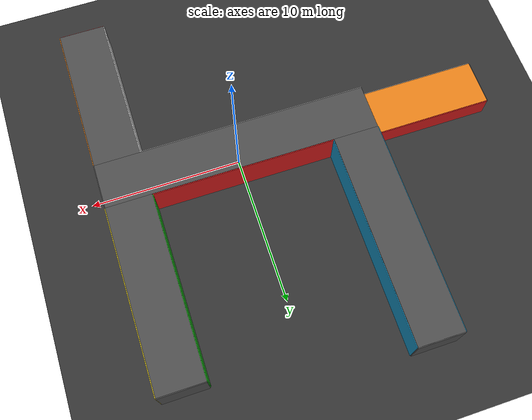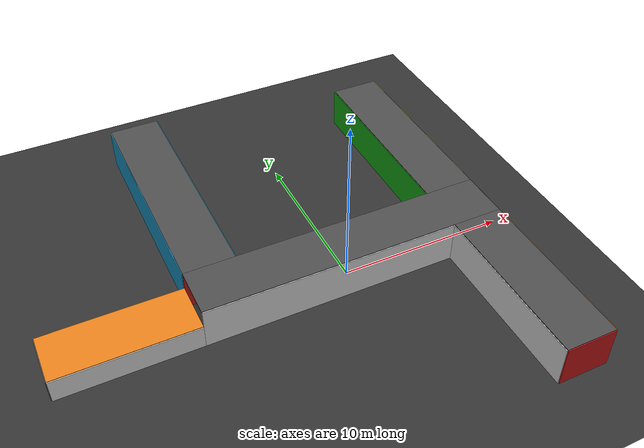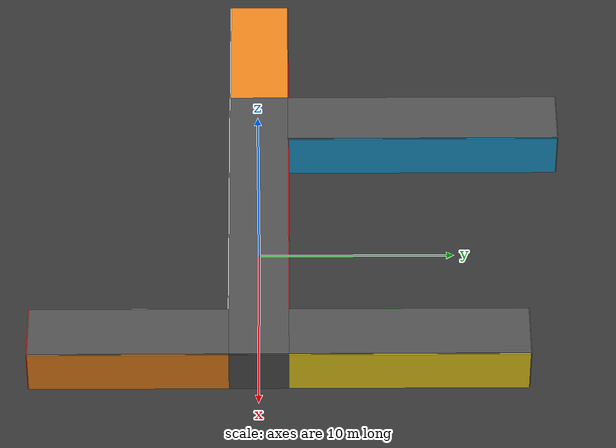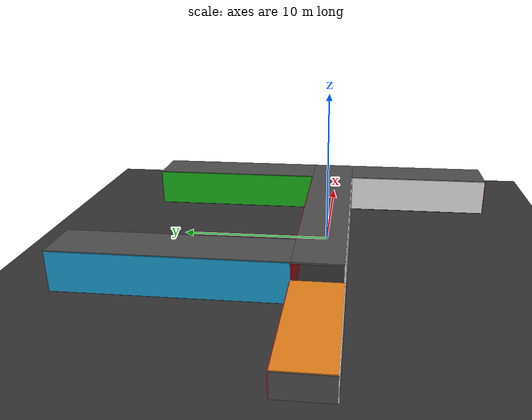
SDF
<?xml version="1.0" ?>
<sdf version="1.6">
  <world name="mine_tunnel">

    <physics type="ode">
      <max_step_size>0.001</max_step_size>
      <real_time_factor>1.0</real_time_factor>
      <real_time_update_rate>1000</real_time_update_rate>
    </physics>

    <scene>
      <ambient>0.3 0.3 0.3 1</ambient>
      <background>0.1 0.1 0.1 1</background>
      <shadows>true</shadows>
    </scene>

    <light type="point" name="light_entrance">
      <pose>-5 0 2.0 0 0 0</pose>
      <diffuse>0.8 0.7 0.5 1</diffuse>
      <attenuation>
        <range>25</range>
        <constant>0.5</constant>
        <linear>0.05</linear>
        <quadratic>0.01</quadratic>
      </attenuation>
    </light>

    <light type="point" name="light_c1_mid">
      <pose>0 0 2.0 0 0 0</pose>
      <diffuse>0.8 0.7 0.5 1</diffuse>
      <attenuation>
        <range>25</range>
        <constant>0.5</constant>
        <linear>0.05</linear>
        <quadratic>0.01</quadratic>
      </attenuation>
    </light>

    <light type="point" name="light_c1_end">
      <pose>7 0 2.0 0 0 0</pose>
      <diffuse>0.8 0.7 0.5 1</diffuse>
      <attenuation>
        <range>25</range>
        <constant>0.5</constant>
        <linear>0.05</linear>
        <quadratic>0.01</quadratic>
      </attenuation>
    </light>

    <light type="point" name="light_c2">
      <pose>7.5 7.5 2.0 0 0 0</pose>
      <diffuse>0.8 0.7 0.5 1</diffuse>
      <attenuation>
        <range>25</range>
        <constant>0.5</constant>
        <linear>0.05</linear>
        <quadratic>0.01</quadratic>
      </attenuation>
    </light>

    <light type="point" name="light_c3">
      <pose>-7.5 8.5 2.0 0 0 0</pose>
      <diffuse>0.8 0.7 0.5 1</diffuse>
      <attenuation>
        <range>25</range>
        <constant>0.5</constant>
        <linear>0.05</linear>
        <quadratic>0.01</quadratic>
      </attenuation>
    </light>

    <light type="point" name="light_deadend">
      <pose>7.5 -6.5 2.0 0 0 0</pose>
      <diffuse>0.6 0.5 0.4 1</diffuse>
      <attenuation>
        <range>20</range>
        <constant>0.5</constant>
        <linear>0.08</linear>
        <quadratic>0.01</quadratic>
      </attenuation>
    </light>

    <light type="point" name="light_reduced">
      <pose>-13 0 1.0 0 0 0</pose>
      <diffuse>0.6 0.5 0.4 1</diffuse>
      <attenuation>
        <range>15</range>
        <constant>0.5</constant>
        <linear>0.08</linear>
        <quadratic>0.02</quadratic>
      </attenuation>
    </light>

    <model name="ground_plane">
      <static>true</static>
      <link name="link">
        <collision name="collision">
          <geometry>
            <plane>
              <normal>0 0 1</normal>
              <size>100 100</size>
            </plane>
          </geometry>
        </collision>
        <visual name="visual">
          <geometry>
            <plane>
              <normal>0 0 1</normal>
              <size>100 100</size>
            </plane>
          </geometry>
          <material>
            <ambient>0.2 0.2 0.2 1</ambient>
            <diffuse>0.2 0.2 0.2 1</diffuse>
          </material>
        </visual>
      </link>
    </model>

    <!-- CORRIDOR 1: Main 18m, Quartz White left, Hematite Red right -->
    <model name="corridor_1_main">
      <static>true</static>
      <pose>0 0 0 0 0 0</pose>
      <link name="link">
        <collision name="floor_col">
          <pose>0 0 0 0 0 0</pose>
          <geometry><box><size>18 3 0.1</size></box></geometry>
        </collision>
        <visual name="floor_vis">
          <pose>0 0 0 0 0 0</pose>
          <geometry><box><size>18 3 0.1</size></box></geometry>
          <material>
            <ambient>0.15 0.15 0.15 1</ambient>
            <diffuse>0.15 0.15 0.15 1</diffuse>
          </material>
        </visual>

        <collision name="left_wall_col">
          <pose>0 -1.5 1.25 0 0 0</pose>
          <geometry><box><size>18 0.1 2.5</size></box></geometry>
        </collision>
        <visual name="left_wall_vis">
          <pose>0 -1.5 1.25 0 0 0</pose>
          <geometry><box><size>18 0.1 2.5</size></box></geometry>
          <material>
            <ambient>0.9 0.9 0.9 1</ambient>
            <diffuse>0.9 0.9 0.9 1</diffuse>
          </material>
        </visual>

        <collision name="right_wall_col">
          <pose>0 1.5 1.25 0 0 0</pose>
          <geometry><box><size>18 0.1 2.5</size></box></geometry>
        </collision>
        <visual name="right_wall_vis">
          <pose>0 1.5 1.25 0 0 0</pose>
          <geometry><box><size>18 0.1 2.5</size></box></geometry>
          <material>
            <ambient>0.8 0.1 0.1 1</ambient>
            <diffuse>0.8 0.1 0.1 1</diffuse>
          </material>
        </visual>

        <collision name="ceiling_col">
          <pose>0 0 2.5 0 0 0</pose>
          <geometry><box><size>18 3 0.1</size></box></geometry>
        </collision>
        <visual name="ceiling_vis">
          <pose>0 0 2.5 0 0 0</pose>
          <geometry><box><size>18 3 0.1</size></box></geometry>
          <material>
            <ambient>0.3 0.3 0.3 1</ambient>
            <diffuse>0.3 0.3 0.3 1</diffuse>
          </material>
        </visual>
      </link>
    </model>

    <!-- CORRIDOR 2: North 12m, Malachite Green left, Chalcopyrite Yellow right -->
    <model name="corridor_2_north">
      <static>true</static>
      <pose>7.5 7.5 0 0 0 0</pose>
      <link name="link">
        <collision name="floor_col">
          <pose>0 0 0 0 0 0</pose>
          <geometry><box><size>3 12 0.1</size></box></geometry>
        </collision>
        <visual name="floor_vis">
          <pose>0 0 0 0 0 0</pose>
          <geometry><box><size>3 12 0.1</size></box></geometry>
          <material>
            <ambient>0.15 0.15 0.15 1</ambient>
            <diffuse>0.15 0.15 0.15 1</diffuse>
          </material>
        </visual>

        <collision name="left_wall_col">
          <pose>-1.5 0 1.25 0 0 0</pose>
          <geometry><box><size>0.1 12 2.5</size></box></geometry>
        </collision>
        <visual name="left_wall_vis">
          <pose>-1.5 0 1.25 0 0 0</pose>
          <geometry><box><size>0.1 12 2.5</size></box></geometry>
          <material>
            <ambient>0.1 0.7 0.1 1</ambient>
            <diffuse>0.1 0.7 0.1 1</diffuse>
          </material>
        </visual>

        <collision name="right_wall_col">
          <pose>1.5 0 1.25 0 0 0</pose>
          <geometry><box><size>0.1 12 2.5</size></box></geometry>
        </collision>
        <visual name="right_wall_vis">
          <pose>1.5 0 1.25 0 0 0</pose>
          <geometry><box><size>0.1 12 2.5</size></box></geometry>
          <material>
            <ambient>0.9 0.8 0.1 1</ambient>
            <diffuse>0.9 0.8 0.1 1</diffuse>
          </material>
        </visual>

        <collision name="ceiling_col">
          <pose>0 0 2.5 0 0 0</pose>
          <geometry><box><size>3 12 0.1</size></box></geometry>
        </collision>
        <visual name="ceiling_vis">
          <pose>0 0 2.5 0 0 0</pose>
          <geometry><box><size>3 12 0.1</size></box></geometry>
          <material>
            <ambient>0.3 0.3 0.3 1</ambient>
            <diffuse>0.3 0.3 0.3 1</diffuse>
          </material>
        </visual>

        <collision name="end_wall_col">
          <pose>0 6 1.25 0 0 0</pose>
          <geometry><box><size>3 0.1 2.5</size></box></geometry>
        </collision>
        <visual name="end_wall_vis">
          <pose>0 6 1.25 0 0 0</pose>
          <geometry><box><size>3 0.1 2.5</size></box></geometry>
          <material>
            <ambient>0.3 0.3 0.3 1</ambient>
            <diffuse>0.3 0.3 0.3 1</diffuse>
          </material>
        </visual>
      </link>
    </model>

    <!-- CORRIDOR 3: West 14m, Limestone Blue/Cyan both walls -->
    <model name="corridor_3_west">
      <static>true</static>
      <pose>-7.5 8.5 0 0 0 0</pose>
      <link name="link">
        <collision name="floor_col">
          <pose>0 0 0 0 0 0</pose>
          <geometry><box><size>3 14 0.1</size></box></geometry>
        </collision>
        <visual name="floor_vis">
          <pose>0 0 0 0 0 0</pose>
          <geometry><box><size>3 14 0.1</size></box></geometry>
          <material>
            <ambient>0.15 0.15 0.15 1</ambient>
            <diffuse>0.15 0.15 0.15 1</diffuse>
          </material>
        </visual>

        <collision name="left_wall_col">
          <pose>-1.5 0 1.25 0 0 0</pose>
          <geometry><box><size>0.1 14 2.5</size></box></geometry>
        </collision>
        <visual name="left_wall_vis">
          <pose>-1.5 0 1.25 0 0 0</pose>
          <geometry><box><size>0.1 14 2.5</size></box></geometry>
          <material>
            <ambient>0.1 0.6 0.8 1</ambient>
            <diffuse>0.1 0.6 0.8 1</diffuse>
          </material>
        </visual>

        <collision name="right_wall_col">
          <pose>1.5 0 1.25 0 0 0</pose>
          <geometry><box><size>0.1 14 2.5</size></box></geometry>
        </collision>
        <visual name="right_wall_vis">
          <pose>1.5 0 1.25 0 0 0</pose>
          <geometry><box><size>0.1 14 2.5</size></box></geometry>
          <material>
            <ambient>0.1 0.6 0.8 1</ambient>
            <diffuse>0.1 0.6 0.8 1</diffuse>
          </material>
        </visual>

        <collision name="ceiling_col">
          <pose>0 0 2.5 0 0 0</pose>
          <geometry><box><size>3 14 0.1</size></box></geometry>
        </collision>
        <visual name="ceiling_vis">
          <pose>0 0 2.5 0 0 0</pose>
          <geometry><box><size>3 14 0.1</size></box></geometry>
          <material>
            <ambient>0.3 0.3 0.3 1</ambient>
            <diffuse>0.3 0.3 0.3 1</diffuse>
          </material>
        </visual>

        <collision name="end_wall_col">
          <pose>0 7 1.25 0 0 0</pose>
          <geometry><box><size>3 0.1 2.5</size></box></geometry>
        </collision>
        <visual name="end_wall_vis">
          <pose>0 7 1.25 0 0 0</pose>
          <geometry><box><size>3 0.1 2.5</size></box></geometry>
          <material>
            <ambient>0.3 0.3 0.3 1</ambient>
            <diffuse>0.3 0.3 0.3 1</diffuse>
          </material>
        </visual>
      </link>
    </model>

    <!-- CORRIDOR 4: Dead End 10m south -->
    <model name="corridor_4_deadend">
      <static>true</static>
      <pose>7.5 -6.5 0 0 0 0</pose>
      <link name="link">
        <collision name="floor_col">
          <pose>0 0 0 0 0 0</pose>
          <geometry><box><size>3 10 0.1</size></box></geometry>
        </collision>
        <visual name="floor_vis">
          <pose>0 0 0 0 0 0</pose>
          <geometry><box><size>3 10 0.1</size></box></geometry>
          <material>
            <ambient>0.15 0.15 0.15 1</ambient>
            <diffuse>0.15 0.15 0.15 1</diffuse>
          </material>
        </visual>

        <collision name="left_wall_col">
          <pose>-1.5 0 1.25 0 0 0</pose>
          <geometry><box><size>0.1 10 2.5</size></box></geometry>
        </collision>
        <visual name="left_wall_vis">
          <pose>-1.5 0 1.25 0 0 0</pose>
          <geometry><box><size>0.1 10 2.5</size></box></geometry>
          <material>
            <ambient>0.9 0.9 0.9 1</ambient>
            <diffuse>0.9 0.9 0.9 1</diffuse>
          </material>
        </visual>

        <collision name="right_wall_col">
          <pose>1.5 0 1.25 0 0 0</pose>
          <geometry><box><size>0.1 10 2.5</size></box></geometry>
        </collision>
        <visual name="right_wall_vis">
          <pose>1.5 0 1.25 0 0 0</pose>
          <geometry><box><size>0.1 10 2.5</size></box></geometry>
          <material>
            <ambient>0.9 0.5 0.1 1</ambient>
            <diffuse>0.9 0.5 0.1 1</diffuse>
          </material>
        </visual>

        <collision name="ceiling_col">
          <pose>0 0 2.5 0 0 0</pose>
          <geometry><box><size>3 10 0.1</size></box></geometry>
        </collision>
        <visual name="ceiling_vis">
          <pose>0 0 2.5 0 0 0</pose>
          <geometry><box><size>3 10 0.1</size></box></geometry>
          <material>
            <ambient>0.3 0.3 0.3 1</ambient>
            <diffuse>0.3 0.3 0.3 1</diffuse>
          </material>
        </visual>

        <collision name="end_wall_col">
          <pose>0 -5 1.25 0 0 0</pose>
          <geometry><box><size>3 0.1 2.5</size></box></geometry>
        </collision>
        <visual name="end_wall_vis">
          <pose>0 -5 1.25 0 0 0</pose>
          <geometry><box><size>3 0.1 2.5</size></box></geometry>
          <material>
            <ambient>0.8 0.1 0.1 1</ambient>
            <diffuse>0.8 0.1 0.1 1</diffuse>
          </material>
        </visual>
      </link>
    </model>

    <!-- CORRIDOR 5: Reduced Height 8m, 1.4m ceiling -->
    <model name="corridor_5_reduced_height">
      <static>true</static>
      <pose>-13 0 0 0 0 0</pose>
      <link name="link">
        <collision name="floor_col">
          <pose>0 0 0 0 0 0</pose>
          <geometry><box><size>8 3 0.1</size></box></geometry>
        </collision>
        <visual name="floor_vis">
          <pose>0 0 0 0 0 0</pose>
          <geometry><box><size>8 3 0.1</size></box></geometry>
          <material>
            <ambient>0.15 0.15 0.15 1</ambient>
            <diffuse>0.15 0.15 0.15 1</diffuse>
          </material>
        </visual>

        <collision name="left_wall_col">
          <pose>0 -1.5 0.7 0 0 0</pose>
          <geometry><box><size>8 0.1 1.4</size></box></geometry>
        </collision>
        <visual name="left_wall_vis">
          <pose>0 -1.5 0.7 0 0 0</pose>
          <geometry><box><size>8 0.1 1.4</size></box></geometry>
          <material>
            <ambient>0.9 0.9 0.9 1</ambient>
            <diffuse>0.9 0.9 0.9 1</diffuse>
          </material>
        </visual>

        <collision name="right_wall_col">
          <pose>0 1.5 0.7 0 0 0</pose>
          <geometry><box><size>8 0.1 1.4</size></box></geometry>
        </collision>
        <visual name="right_wall_vis">
          <pose>0 1.5 0.7 0 0 0</pose>
          <geometry><box><size>8 0.1 1.4</size></box></geometry>
          <material>
            <ambient>0.8 0.1 0.1 1</ambient>
            <diffuse>0.8 0.1 0.1 1</diffuse>
          </material>
        </visual>

        <collision name="ceiling_col">
          <pose>0 0 1.4 0 0 0</pose>
          <geometry><box><size>8 3 0.1</size></box></geometry>
        </collision>
        <visual name="ceiling_vis">
          <pose>0 0 1.4 0 0 0</pose>
          <geometry><box><size>8 3 0.1</size></box></geometry>
          <material>
            <ambient>0.9 0.5 0.1 1</ambient>
            <diffuse>0.9 0.5 0.1 1</diffuse>
          </material>
        </visual>

        <collision name="end_wall_col">
          <pose>-4 0 0.7 0 0 0</pose>
          <geometry><box><size>0.1 3 1.4</size></box></geometry>
        </collision>
        <visual name="end_wall_vis">
          <pose>-4 0 0.7 0 0 0</pose>
          <geometry><box><size>0.1 3 1.4</size></box></geometry>
          <material>
            <ambient>0.3 0.3 0.3 1</ambient>
            <diffuse>0.3 0.3 0.3 1</diffuse>
          </material>
        </visual>
      </link>
    </model>

    <!-- East cap of Corridor 1 -->
    <model name="cap_east">
      <static>true</static>
      <link name="link">
        <collision name="col">
          <pose>9 0 1.25 0 0 0</pose>
          <geometry><box><size>0.1 3 2.5</size></box></geometry>
        </collision>
        <visual name="vis">
          <pose>9 0 1.25 0 0 0</pose>
          <geometry><box><size>0.1 3 2.5</size></box></geometry>
          <material>
            <ambient>0.3 0.3 0.3 1</ambient>
            <diffuse>0.3 0.3 0.3 1</diffuse>
          </material>
        </visual>
      </link>
    </model>

  </world>
</sdf>
